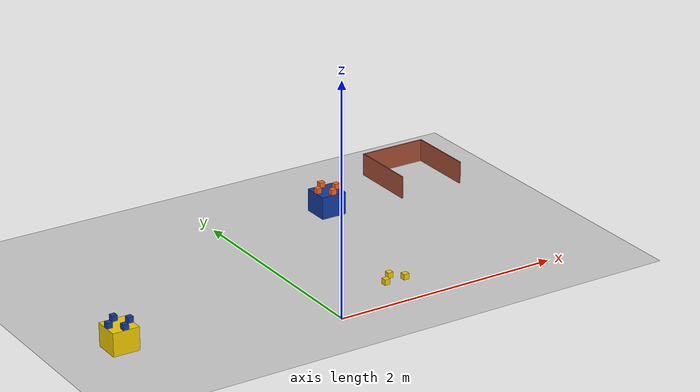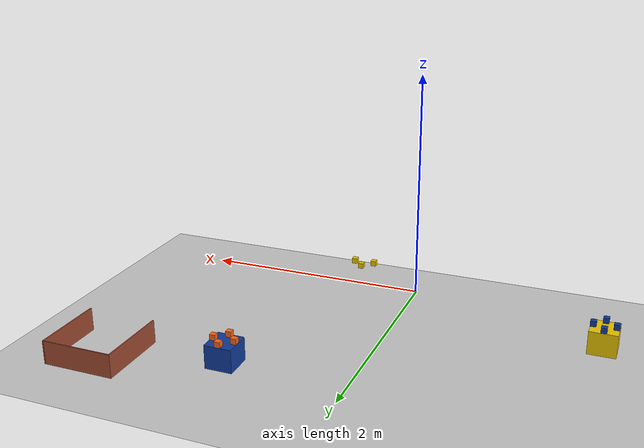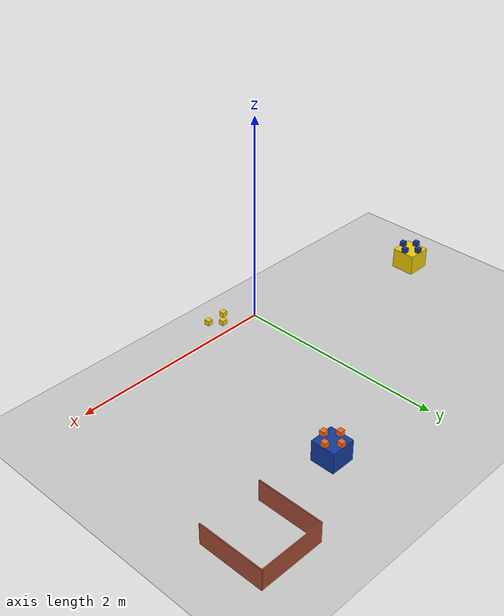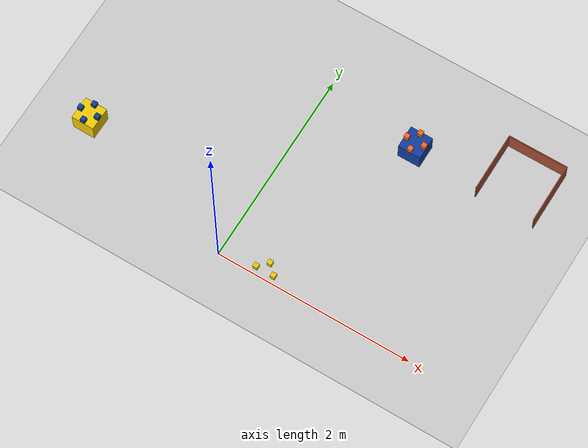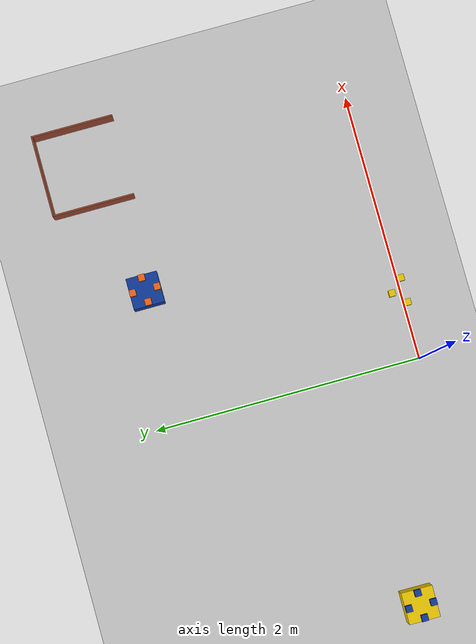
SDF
<sdf version="1.5">
 <world name="default">
  <model name="ground_plane">
   <static>1</static>
   <link name="link">
    <collision name="collision">
     <geometry><plane><normal>0 0 1</normal><size>100 100</size></plane></geometry>
     <surface><friction><ode><mu>100</mu><mu2>50</mu2></ode></friction></surface>
    </collision>
    <visual name="visual">
     <cast_shadows>0</cast_shadows>
     <geometry><plane><normal>0 0 1</normal><size>100 100</size></plane></geometry>
     <material>
      <script><uri>file://media/materials/scripts/gazebo.material</uri><name>Gazebo/Grey</name></script>
     </material>
    </visual>
   </link>
  </model>
  <model name="wroWall_0"><static>0</static><pose>0.241047 0.391778 0 0 -0 0</pose></model>
  <model name="wroWall_1"><static>0</static><pose>-0.148312 0.093379 0 0 -0 0</pose></model>
  <model name="blue_climate">
   <link name="link_0">
    <inertial>
     <mass>3</mass>
     <inertia>
      <ixx>0.166667</ixx>
      <ixy>0</ixy>
      <ixz>0</ixz>
      <iyy>0.166667</iyy>
      <iyz>0</iyz>
      <izz>0.166667</izz>
     </inertia>
    </inertial>
    <visual name="visual">
     <geometry><box><size>0.23 0.23 0.2</size></box></geometry>
     <material>
      <lighting>1</lighting>
      <script><uri>file://media/materials/scripts/gazebo.material</uri><name>Gazebo/Grey</name></script>
      <ambient>0.063 0.235 0.624 1</ambient>
      <diffuse>0.063 0.235 0.624 1</diffuse>
      <specular>0.063 0.235 0.624 1</specular>
      <emissive>0 0 0 1</emissive>
      <shader type="vertex"><normal_map>__default__</normal_map></shader>
     </material>
    </visual>
    <collision name="collision">
     <geometry><box><size>0.23 0.23 0.2</size></box></geometry>
     <surface>
      <friction>
       <ode><mu>1</mu><mu2>1</mu2><fdir1>0 0 0</fdir1><slip1>0</slip1><slip2>0</slip2></ode>
       <torsional>
        <coefficient>1</coefficient>
        <patch_radius>0</patch_radius>
        <surface_radius>0</surface_radius>
        <use_patch_radius>1</use_patch_radius>
        <ode><slip>0</slip></ode>
       </torsional>
      </friction>
      <bounce><restitution_coefficient>0.3</restitution_coefficient><threshold>1e+06</threshold></bounce>
      <contact>
       <collide_without_contact>0</collide_without_contact>
       <collide_without_contact_bitmask>1</collide_without_contact_bitmask>
       <collide_bitmask>1</collide_bitmask>
       <ode>
        <soft_cfm>0</soft_cfm>
        <soft_erp>0.2</soft_erp>
        <kp>1e+13</kp>
        <kd>1</kd>
        <max_vel>0.01</max_vel>
        <min_depth>0</min_depth>
       </ode>
       <bullet>
        <split_impulse>1</split_impulse>
        <split_impulse_penetration_threshold>-0.01</split_impulse_penetration_threshold>
        <soft_cfm>0</soft_cfm>
        <soft_erp>0.2</soft_erp>
        <kp>1e+13</kp>
        <kd>1</kd>
       </bullet>
      </contact>
     </surface>
    </collision>
   </link>
   <static>0</static>
   <pose>1 1.8 0.1 0 0 -3e-06</pose>
  </model>
  <model name="yellow_climate">
   <link name="link_0">
    <inertial>
     <mass>3</mass>
     <inertia>
      <ixx>0.166667</ixx>
      <ixy>0</ixy>
      <ixz>0</ixz>
      <iyy>0.166667</iyy>
      <iyz>0</iyz>
      <izz>0.166667</izz>
     </inertia>
    </inertial>
    <visual name="visual">
     <geometry><box><size>0.23 0.23 0.2</size></box></geometry>
     <material>
      <lighting>1</lighting>
      <script><uri>file://media/materials/scripts/gazebo.material</uri><name>Gazebo/Grey</name></script>
      <ambient>0.95 0.8 0 1</ambient>
      <diffuse>0.95 0.8 0 1</diffuse>
      <specular>0.95 0.8 0 1</specular>
      <emissive>0 0 0 1</emissive>
      <shader type="vertex"><normal_map>__default__</normal_map></shader>
     </material>
    </visual>
    <collision name="collision">
     <geometry><box><size>0.23 0.23 0.2</size></box></geometry>
     <surface>
      <friction>
       <ode><mu>1</mu><mu2>1</mu2><fdir1>0 0 0</fdir1><slip1>0</slip1><slip2>0</slip2></ode>
       <torsional>
        <coefficient>1</coefficient>
        <patch_radius>0</patch_radius>
        <surface_radius>0</surface_radius>
        <use_patch_radius>1</use_patch_radius>
        <ode><slip>0</slip></ode>
       </torsional>
      </friction>
      <bounce><restitution_coefficient>0.3</restitution_coefficient><threshold>1e+06</threshold></bounce>
      <contact>
       <collide_without_contact>0</collide_without_contact>
       <collide_without_contact_bitmask>1</collide_without_contact_bitmask>
       <collide_bitmask>1</collide_bitmask>
       <ode>
        <soft_cfm>0</soft_cfm>
        <soft_erp>0.2</soft_erp>
        <kp>1e+13</kp>
        <kd>1</kd>
        <max_vel>0.01</max_vel>
        <min_depth>0</min_depth>
       </ode>
       <bullet>
        <split_impulse>1</split_impulse>
        <split_impulse_penetration_threshold>-0.01</split_impulse_penetration_threshold>
        <soft_cfm>0</soft_cfm>
        <soft_erp>0.2</soft_erp>
        <kp>1e+13</kp>
        <kd>1</kd>
       </bullet>
      </contact>
     </surface>
    </collision>
   </link>
   <static>0</static>
   <pose>-1.7 0.5 0.09987 1e-06 3e-06 -0.008682</pose>
  </model>
  <model name="orange_plant">
   <link name="link_0">
    <inertial>
     <mass>0.03</mass>
     <inertia>
      <ixx>0.166667</ixx>
      <ixy>0</ixy>
      <ixz>0</ixz>
      <iyy>0.166667</iyy>
      <iyz>0</iyz>
      <izz>0.166667</izz>
     </inertia>
    </inertial>
    <visual name="visual">
     <geometry><box><size>0.048 0.048 0.048</size></box></geometry>
     <material>
      <lighting>1</lighting>
      <script><uri>file://media/materials/scripts/gazebo.material</uri><name>Gazebo/Grey</name></script>
      <ambient>0.99 0.4 0.1 1</ambient>
      <diffuse>0.99 0.4 0.1 1</diffuse>
      <specular>0.99 0.4 0.1 1</specular>
      <emissive>0 0 0 1</emissive>
      <shader type="vertex"><normal_map>__default__</normal_map></shader>
     </material>
    </visual>
    <collision name="collision">
     <geometry><box><size>0.048 0.048 0.048</size></box></geometry>
     <surface>
      <friction>
       <ode><mu>1</mu><mu2>1</mu2><fdir1>0 0 0</fdir1><slip1>0</slip1><slip2>0</slip2></ode>
       <torsional>
        <coefficient>1</coefficient>
        <patch_radius>0</patch_radius>
        <surface_radius>0</surface_radius>
        <use_patch_radius>1</use_patch_radius>
        <ode><slip>0</slip></ode>
       </torsional>
      </friction>
      <bounce><restitution_coefficient>0.3</restitution_coefficient><threshold>1e+06</threshold></bounce>
      <contact>
       <collide_without_contact>0</collide_without_contact>
       <collide_without_contact_bitmask>1</collide_without_contact_bitmask>
       <collide_bitmask>1</collide_bitmask>
       <ode>
        <soft_cfm>0</soft_cfm>
        <soft_erp>0.2</soft_erp>
        <kp>1e+13</kp>
        <kd>1</kd>
        <max_vel>0.01</max_vel>
        <min_depth>0</min_depth>
       </ode>
       <bullet>
        <split_impulse>1</split_impulse>
        <split_impulse_penetration_threshold>-0.01</split_impulse_penetration_threshold>
        <soft_cfm>0</soft_cfm>
        <soft_erp>0.2</soft_erp>
        <kp>1e+13</kp>
        <kd>1</kd>
       </bullet>
      </contact>
     </surface>
    </collision>
   </link>
   <static>0</static>
   <pose>0.909264 1.7999 0.224003 2.6e-05 0.000107 0.002305</pose>
  </model>
  <model name="orange_plant_0">
   <link name="link_0">
    <inertial>
     <mass>0.03</mass>
     <inertia>
      <ixx>0.166667</ixx>
      <ixy>0</ixy>
      <ixz>0</ixz>
      <iyy>0.166667</iyy>
      <iyz>0</iyz>
      <izz>0.166667</izz>
     </inertia>
    </inertial>
    <visual name="visual">
     <geometry><box><size>0.048 0.048 0.048</size></box></geometry>
     <material>
      <lighting>1</lighting>
      <script><uri>file://media/materials/scripts/gazebo.material</uri><name>Gazebo/Grey</name></script>
      <ambient>0.99 0.4 0.1 1</ambient>
      <diffuse>0.99 0.4 0.1 1</diffuse>
      <specular>0.99 0.4 0.1 1</specular>
      <emissive>0 0 0 1</emissive>
      <shader type="vertex"><normal_map>__default__</normal_map></shader>
     </material>
    </visual>
    <collision name="collision">
     <geometry><box><size>0.048 0.048 0.048</size></box></geometry>
     <surface>
      <friction>
       <ode><mu>1</mu><mu2>1</mu2><fdir1>0 0 0</fdir1><slip1>0</slip1><slip2>0</slip2></ode>
       <torsional>
        <coefficient>1</coefficient>
        <patch_radius>0</patch_radius>
        <surface_radius>0</surface_radius>
        <use_patch_radius>1</use_patch_radius>
        <ode><slip>0</slip></ode>
       </torsional>
      </friction>
      <bounce><restitution_coefficient>0.3</restitution_coefficient><threshold>1e+06</threshold></bounce>
      <contact>
       <collide_without_contact>0</collide_without_contact>
       <collide_without_contact_bitmask>1</collide_without_contact_bitmask>
       <collide_bitmask>1</collide_bitmask>
       <ode>
        <soft_cfm>0</soft_cfm>
        <soft_erp>0.2</soft_erp>
        <kp>1e+13</kp>
        <kd>1</kd>
        <max_vel>0.01</max_vel>
        <min_depth>0</min_depth>
       </ode>
       <bullet>
        <split_impulse>1</split_impulse>
        <split_impulse_penetration_threshold>-0.01</split_impulse_penetration_threshold>
        <soft_cfm>0</soft_cfm>
        <soft_erp>0.2</soft_erp>
        <kp>1e+13</kp>
        <kd>1</kd>
       </bullet>
      </contact>
     </surface>
    </collision>
   </link>
   <static>0</static>
   <pose>1.09081 1.80007 0.224001 1.6e-05 -1.6e-05 0.004322</pose>
  </model>
  <model name="orange_plant_1">
   <link name="link_0">
    <inertial>
     <mass>0.03</mass>
     <inertia>
      <ixx>0.166667</ixx>
      <ixy>0</ixy>
      <ixz>0</ixz>
      <iyy>0.166667</iyy>
      <iyz>0</iyz>
      <izz>0.166667</izz>
     </inertia>
    </inertial>
    <visual name="visual">
     <geometry><box><size>0.048 0.048 0.048</size></box></geometry>
     <material>
      <lighting>1</lighting>
      <script><uri>file://media/materials/scripts/gazebo.material</uri><name>Gazebo/Grey</name></script>
      <ambient>0.99 0.4 0.1 1</ambient>
      <diffuse>0.99 0.4 0.1 1</diffuse>
      <specular>0.99 0.4 0.1 1</specular>
      <emissive>0 0 0 1</emissive>
      <shader type="vertex"><normal_map>__default__</normal_map></shader>
     </material>
    </visual>
    <collision name="collision">
     <geometry><box><size>0.048 0.048 0.048</size></box></geometry>
     <surface>
      <friction>
       <ode><mu>1</mu><mu2>1</mu2><fdir1>0 0 0</fdir1><slip1>0</slip1><slip2>0</slip2></ode>
       <torsional>
        <coefficient>1</coefficient>
        <patch_radius>0</patch_radius>
        <surface_radius>0</surface_radius>
        <use_patch_radius>1</use_patch_radius>
        <ode><slip>0</slip></ode>
       </torsional>
      </friction>
      <bounce><restitution_coefficient>0.3</restitution_coefficient><threshold>1e+06</threshold></bounce>
      <contact>
       <collide_without_contact>0</collide_without_contact>
       <collide_without_contact_bitmask>1</collide_without_contact_bitmask>
       <collide_bitmask>1</collide_bitmask>
       <ode>
        <soft_cfm>0</soft_cfm>
        <soft_erp>0.2</soft_erp>
        <kp>1e+13</kp>
        <kd>1</kd>
        <max_vel>0.01</max_vel>
        <min_depth>0</min_depth>
       </ode>
       <bullet>
        <split_impulse>1</split_impulse>
        <split_impulse_penetration_threshold>-0.01</split_impulse_penetration_threshold>
        <soft_cfm>0</soft_cfm>
        <soft_erp>0.2</soft_erp>
        <kp>1e+13</kp>
        <kd>1</kd>
       </bullet>
      </contact>
     </surface>
    </collision>
   </link>
   <static>0</static>
   <pose>0.999988 1.70914 0.224001 1.1e-05 2e-05 -0.000402</pose>
  </model>
  <model name="orange_plant_2">
   <link name="link_0">
    <inertial>
     <mass>0.03</mass>
     <inertia>
      <ixx>0.166667</ixx>
      <ixy>0</ixy>
      <ixz>0</ixz>
      <iyy>0.166667</iyy>
      <iyz>0</iyz>
      <izz>0.166667</izz>
     </inertia>
    </inertial>
    <visual name="visual">
     <geometry><box><size>0.048 0.048 0.048</size></box></geometry>
     <material>
      <lighting>1</lighting>
      <script><uri>file://media/materials/scripts/gazebo.material</uri><name>Gazebo/Grey</name></script>
      <ambient>0.99 0.4 0.1 1</ambient>
      <diffuse>0.99 0.4 0.1 1</diffuse>
      <specular>0.99 0.4 0.1 1</specular>
      <emissive>0 0 0 1</emissive>
      <shader type="vertex"><normal_map>__default__</normal_map></shader>
     </material>
    </visual>
    <collision name="collision">
     <geometry><box><size>0.048 0.048 0.048</size></box></geometry>
     <surface>
      <friction>
       <ode><mu>1</mu><mu2>1</mu2><fdir1>0 0 0</fdir1><slip1>0</slip1><slip2>0</slip2></ode>
       <torsional>
        <coefficient>1</coefficient>
        <patch_radius>0</patch_radius>
        <surface_radius>0</surface_radius>
        <use_patch_radius>1</use_patch_radius>
        <ode><slip>0</slip></ode>
       </torsional>
      </friction>
      <bounce><restitution_coefficient>0.3</restitution_coefficient><threshold>1e+06</threshold></bounce>
      <contact>
       <collide_without_contact>0</collide_without_contact>
       <collide_without_contact_bitmask>1</collide_without_contact_bitmask>
       <collide_bitmask>1</collide_bitmask>
       <ode>
        <soft_cfm>0</soft_cfm>
        <soft_erp>0.2</soft_erp>
        <kp>1e+13</kp>
        <kd>1</kd>
        <max_vel>0.01</max_vel>
        <min_depth>0</min_depth>
       </ode>
       <bullet>
        <split_impulse>1</split_impulse>
        <split_impulse_penetration_threshold>-0.01</split_impulse_penetration_threshold>
        <soft_cfm>0</soft_cfm>
        <soft_erp>0.2</soft_erp>
        <kp>1e+13</kp>
        <kd>1</kd>
       </bullet>
      </contact>
     </surface>
    </collision>
   </link>
   <static>0</static>
   <pose>1.00009 1.89099 0.223993 -4.9e-05 -3.6e-05 0.002149</pose>
  </model>
  <model name="yellow_plant">
   <link name="link_0">
    <inertial>
     <mass>0.03</mass>
     <inertia>
      <ixx>0.166667</ixx>
      <ixy>0</ixy>
      <ixz>0</ixz>
      <iyy>0.166667</iyy>
      <iyz>0</iyz>
      <izz>0.166667</izz>
     </inertia>
    </inertial>
    <visual name="visual">
     <geometry><box><size>0.048 0.048 0.048</size></box></geometry>
     <material>
      <lighting>1</lighting>
      <script><uri>file://media/materials/scripts/gazebo.material</uri><name>Gazebo/Grey</name></script>
      <ambient>0.95 0.8 0 1</ambient>
      <diffuse>0.95 0.8 0 1</diffuse>
      <specular>0.95 0.8 0 1</specular>
      <emissive>0 0 0 1</emissive>
      <shader type="vertex"><normal_map>__default__</normal_map></shader>
     </material>
    </visual>
    <collision name="collision">
     <geometry><box><size>0.048 0.048 0.048</size></box></geometry>
     <surface>
      <friction>
       <ode><mu>1</mu><mu2>1</mu2><fdir1>0 0 0</fdir1><slip1>0</slip1><slip2>0</slip2></ode>
       <torsional>
        <coefficient>1</coefficient>
        <patch_radius>0</patch_radius>
        <surface_radius>0</surface_radius>
        <use_patch_radius>1</use_patch_radius>
        <ode><slip>0</slip></ode>
       </torsional>
      </friction>
      <bounce><restitution_coefficient>0.3</restitution_coefficient><threshold>1e+06</threshold></bounce>
      <contact>
       <collide_without_contact>0</collide_without_contact>
       <collide_without_contact_bitmask>1</collide_without_contact_bitmask>
       <collide_bitmask>1</collide_bitmask>
       <ode>
        <soft_cfm>0</soft_cfm>
        <soft_erp>0.2</soft_erp>
        <kp>1e+13</kp>
        <kd>1</kd>
        <max_vel>0.01</max_vel>
        <min_depth>0</min_depth>
       </ode>
       <bullet>
        <split_impulse>1</split_impulse>
        <split_impulse_penetration_threshold>-0.01</split_impulse_penetration_threshold>
        <soft_cfm>0</soft_cfm>
        <soft_erp>0.2</soft_erp>
        <kp>1e+13</kp>
        <kd>1</kd>
       </bullet>
      </contact>
     </surface>
    </collision>
   </link>
   <static>0</static>
   <pose>0.40928 7.8e-05 0.224003 -8.7e-05 3e-05 -0.00278</pose>
  </model>
  <model name="yellow_plant_0">
   <link name="link_0">
    <inertial>
     <mass>0.03</mass>
     <inertia>
      <ixx>0.166667</ixx>
      <ixy>0</ixy>
      <ixz>0</ixz>
      <iyy>0.166667</iyy>
      <iyz>0</iyz>
      <izz>0.166667</izz>
     </inertia>
    </inertial>
    <visual name="visual">
     <geometry><box><size>0.048 0.048 0.048</size></box></geometry>
     <material>
      <lighting>1</lighting>
      <script><uri>file://media/materials/scripts/gazebo.material</uri><name>Gazebo/Grey</name></script>
      <ambient>0.95 0.8 0 1</ambient>
      <diffuse>0.95 0.8 0 1</diffuse>
      <specular>0.95 0.8 0 1</specular>
      <emissive>0 0 0 1</emissive>
      <shader type="vertex"><normal_map>__default__</normal_map></shader>
     </material>
    </visual>
    <collision name="collision">
     <geometry><box><size>0.048 0.048 0.048</size></box></geometry>
     <surface>
      <friction>
       <ode><mu>1</mu><mu2>1</mu2><fdir1>0 0 0</fdir1><slip1>0</slip1><slip2>0</slip2></ode>
       <torsional>
        <coefficient>1</coefficient>
        <patch_radius>0</patch_radius>
        <surface_radius>0</surface_radius>
        <use_patch_radius>1</use_patch_radius>
        <ode><slip>0</slip></ode>
       </torsional>
      </friction>
      <bounce><restitution_coefficient>0.3</restitution_coefficient><threshold>1e+06</threshold></bounce>
      <contact>
       <collide_without_contact>0</collide_without_contact>
       <collide_without_contact_bitmask>1</collide_without_contact_bitmask>
       <collide_bitmask>1</collide_bitmask>
       <ode>
        <soft_cfm>0</soft_cfm>
        <soft_erp>0.2</soft_erp>
        <kp>1e+13</kp>
        <kd>1</kd>
        <max_vel>0.01</max_vel>
        <min_depth>0</min_depth>
       </ode>
       <bullet>
        <split_impulse>1</split_impulse>
        <split_impulse_penetration_threshold>-0.01</split_impulse_penetration_threshold>
        <soft_cfm>0</soft_cfm>
        <soft_erp>0.2</soft_erp>
        <kp>1e+13</kp>
        <kd>1</kd>
       </bullet>
      </contact>
     </surface>
    </collision>
   </link>
   <static>0</static>
   <pose>0.590786 5.4e-05 0.224003 2.6e-05 9e-05 -0.000201</pose>
  </model>
  <model name="yellow_plant_1">
   <link name="link_0">
    <inertial>
     <mass>0.03</mass>
     <inertia>
      <ixx>0.166667</ixx>
      <ixy>0</ixy>
      <ixz>0</ixz>
      <iyy>0.166667</iyy>
      <iyz>0</iyz>
      <izz>0.166667</izz>
     </inertia>
    </inertial>
    <visual name="visual">
     <geometry><box><size>0.048 0.048 0.048</size></box></geometry>
     <material>
      <lighting>1</lighting>
      <script><uri>file://media/materials/scripts/gazebo.material</uri><name>Gazebo/Grey</name></script>
      <ambient>0.95 0.8 0 1</ambient>
      <diffuse>0.95 0.8 0 1</diffuse>
      <specular>0.95 0.8 0 1</specular>
      <emissive>0 0 0 1</emissive>
      <shader type="vertex"><normal_map>__default__</normal_map></shader>
     </material>
    </visual>
    <collision name="collision">
     <geometry><box><size>0.048 0.048 0.048</size></box></geometry>
     <surface>
      <friction>
       <ode><mu>1</mu><mu2>1</mu2><fdir1>0 0 0</fdir1><slip1>0</slip1><slip2>0</slip2></ode>
       <torsional>
        <coefficient>1</coefficient>
        <patch_radius>0</patch_radius>
        <surface_radius>0</surface_radius>
        <use_patch_radius>1</use_patch_radius>
        <ode><slip>0</slip></ode>
       </torsional>
      </friction>
      <bounce><restitution_coefficient>0.3</restitution_coefficient><threshold>1e+06</threshold></bounce>
      <contact>
       <collide_without_contact>0</collide_without_contact>
       <collide_without_contact_bitmask>1</collide_without_contact_bitmask>
       <collide_bitmask>1</collide_bitmask>
       <ode>
        <soft_cfm>0</soft_cfm>
        <soft_erp>0.2</soft_erp>
        <kp>1e+13</kp>
        <kd>1</kd>
        <max_vel>0.01</max_vel>
        <min_depth>0</min_depth>
       </ode>
       <bullet>
        <split_impulse>1</split_impulse>
        <split_impulse_penetration_threshold>-0.01</split_impulse_penetration_threshold>
        <soft_cfm>0</soft_cfm>
        <soft_erp>0.2</soft_erp>
        <kp>1e+13</kp>
        <kd>1</kd>
       </bullet>
      </contact>
     </surface>
    </collision>
   </link>
   <static>0</static>
   <pose>0.50012 0.090924 0.224 -1.1e-05 -6e-06 0.001392</pose>
  </model>
  <model name="blue_plants">
   <link name="link_0">
    <inertial>
     <mass>0.03</mass>
     <inertia>
      <ixx>0.166667</ixx>
      <ixy>0</ixy>
      <ixz>0</ixz>
      <iyy>0.166667</iyy>
      <iyz>0</iyz>
      <izz>0.166667</izz>
     </inertia>
    </inertial>
    <visual name="visual">
     <geometry><box><size>0.048 0.048 0.048</size></box></geometry>
     <material>
      <lighting>1</lighting>
      <script><uri>file://media/materials/scripts/gazebo.material</uri><name>Gazebo/Grey</name></script>
      <ambient>0.063 0.235 0.624 1</ambient>
      <diffuse>0.063 0.235 0.624 1</diffuse>
      <specular>0.063 0.235 0.624 1</specular>
      <emissive>0 0 0 1</emissive>
      <shader type="vertex"><normal_map>__default__</normal_map></shader>
     </material>
    </visual>
    <collision name="collision">
     <geometry><box><size>0.048 0.048 0.048</size></box></geometry>
     <surface>
      <friction>
       <ode><mu>1</mu><mu2>1</mu2><fdir1>0 0 0</fdir1><slip1>0</slip1><slip2>0</slip2></ode>
       <torsional>
        <coefficient>1</coefficient>
        <patch_radius>0</patch_radius>
        <surface_radius>0</surface_radius>
        <use_patch_radius>1</use_patch_radius>
        <ode><slip>0</slip></ode>
       </torsional>
      </friction>
      <bounce><restitution_coefficient>0.3</restitution_coefficient><threshold>1e+06</threshold></bounce>
      <contact>
       <collide_without_contact>0</collide_without_contact>
       <collide_without_contact_bitmask>1</collide_without_contact_bitmask>
       <collide_bitmask>1</collide_bitmask>
       <ode>
        <soft_cfm>0</soft_cfm>
        <soft_erp>0.2</soft_erp>
        <kp>1e+13</kp>
        <kd>1</kd>
        <max_vel>0.01</max_vel>
        <min_depth>0</min_depth>
       </ode>
       <bullet>
        <split_impulse>1</split_impulse>
        <split_impulse_penetration_threshold>-0.01</split_impulse_penetration_threshold>
        <soft_cfm>0</soft_cfm>
        <soft_erp>0.2</soft_erp>
        <kp>1e+13</kp>
        <kd>1</kd>
       </bullet>
      </contact>
     </surface>
    </collision>
   </link>
   <static>0</static>
   <pose>-1.60909 0.500066 0.223865 6.6e-05 -0.000128 0.000303</pose>
  </model>
  <model name="blue_plants_0">
   <link name="link_0">
    <inertial>
     <mass>0.03</mass>
     <inertia>
      <ixx>0.166667</ixx>
      <ixy>0</ixy>
      <ixz>0</ixz>
      <iyy>0.166667</iyy>
      <iyz>0</iyz>
      <izz>0.166667</izz>
     </inertia>
    </inertial>
    <visual name="visual">
     <geometry><box><size>0.048 0.048 0.048</size></box></geometry>
     <material>
      <lighting>1</lighting>
      <script><uri>file://media/materials/scripts/gazebo.material</uri><name>Gazebo/Grey</name></script>
      <ambient>0.063 0.235 0.624 1</ambient>
      <diffuse>0.063 0.235 0.624 1</diffuse>
      <specular>0.063 0.235 0.624 1</specular>
      <emissive>0 0 0 1</emissive>
      <shader type="vertex"><normal_map>__default__</normal_map></shader>
     </material>
    </visual>
    <collision name="collision">
     <geometry><box><size>0.048 0.048 0.048</size></box></geometry>
     <surface>
      <friction>
       <ode><mu>1</mu><mu2>1</mu2><fdir1>0 0 0</fdir1><slip1>0</slip1><slip2>0</slip2></ode>
       <torsional>
        <coefficient>1</coefficient>
        <patch_radius>0</patch_radius>
        <surface_radius>0</surface_radius>
        <use_patch_radius>1</use_patch_radius>
        <ode><slip>0</slip></ode>
       </torsional>
      </friction>
      <bounce><restitution_coefficient>0.3</restitution_coefficient><threshold>1e+06</threshold></bounce>
      <contact>
       <collide_without_contact>0</collide_without_contact>
       <collide_without_contact_bitmask>1</collide_without_contact_bitmask>
       <collide_bitmask>1</collide_bitmask>
       <ode>
        <soft_cfm>0</soft_cfm>
        <soft_erp>0.2</soft_erp>
        <kp>1e+13</kp>
        <kd>1</kd>
        <max_vel>0.01</max_vel>
        <min_depth>0</min_depth>
       </ode>
       <bullet>
        <split_impulse>1</split_impulse>
        <split_impulse_penetration_threshold>-0.01</split_impulse_penetration_threshold>
        <soft_cfm>0</soft_cfm>
        <soft_erp>0.2</soft_erp>
        <kp>1e+13</kp>
        <kd>1</kd>
       </bullet>
      </contact>
     </surface>
    </collision>
   </link>
   <static>0</static>
   <pose>-1.79089 0.499828 0.224009 2.6e-05 0.000359 0.000359</pose>
  </model>
  <model name="blue_plants_1">
   <link name="link_0">
    <inertial>
     <mass>0.03</mass>
     <inertia>
      <ixx>0.166667</ixx>
      <ixy>0</ixy>
      <ixz>0</ixz>
      <iyy>0.166667</iyy>
      <iyz>0</iyz>
      <izz>0.166667</izz>
     </inertia>
    </inertial>
    <visual name="visual">
     <geometry><box><size>0.048 0.048 0.048</size></box></geometry>
     <material>
      <lighting>1</lighting>
      <script><uri>file://media/materials/scripts/gazebo.material</uri><name>Gazebo/Grey</name></script>
      <ambient>0.063 0.235 0.624 1</ambient>
      <diffuse>0.063 0.235 0.624 1</diffuse>
      <specular>0.063 0.235 0.624 1</specular>
      <emissive>0 0 0 1</emissive>
      <shader type="vertex"><normal_map>__default__</normal_map></shader>
     </material>
    </visual>
    <collision name="collision">
     <geometry><box><size>0.048 0.048 0.048</size></box></geometry>
     <surface>
      <friction>
       <ode><mu>1</mu><mu2>1</mu2><fdir1>0 0 0</fdir1><slip1>0</slip1><slip2>0</slip2></ode>
       <torsional>
        <coefficient>1</coefficient>
        <patch_radius>0</patch_radius>
        <surface_radius>0</surface_radius>
        <use_patch_radius>1</use_patch_radius>
        <ode><slip>0</slip></ode>
       </torsional>
      </friction>
      <bounce><restitution_coefficient>0.3</restitution_coefficient><threshold>1e+06</threshold></bounce>
      <contact>
       <collide_without_contact>0</collide_without_contact>
       <collide_without_contact_bitmask>1</collide_without_contact_bitmask>
       <collide_bitmask>1</collide_bitmask>
       <ode>
        <soft_cfm>0</soft_cfm>
        <soft_erp>0.2</soft_erp>
        <kp>1e+13</kp>
        <kd>1</kd>
        <max_vel>0.01</max_vel>
        <min_depth>0</min_depth>
       </ode>
       <bullet>
        <split_impulse>1</split_impulse>
        <split_impulse_penetration_threshold>-0.01</split_impulse_penetration_threshold>
        <soft_cfm>0</soft_cfm>
        <soft_erp>0.2</soft_erp>
        <kp>1e+13</kp>
        <kd>1</kd>
       </bullet>
      </contact>
     </surface>
    </collision>
   </link>
   <static>0</static>
   <pose>-1.69997 0.590936 0.224004 3e-06 0.000179 0.002293</pose>
  </model>
  <model name="blue_plants_2">
   <link name="link_0">
    <inertial>
     <mass>0.03</mass>
     <inertia>
      <ixx>0.166667</ixx>
      <ixy>0</ixy>
      <ixz>0</ixz>
      <iyy>0.166667</iyy>
      <iyz>0</iyz>
      <izz>0.166667</izz>
     </inertia>
    </inertial>
    <visual name="visual">
     <geometry><box><size>0.048 0.048 0.048</size></box></geometry>
     <material>
      <lighting>1</lighting>
      <script><uri>file://media/materials/scripts/gazebo.material</uri><name>Gazebo/Grey</name></script>
      <ambient>0.063 0.235 0.624 1</ambient>
      <diffuse>0.063 0.235 0.624 1</diffuse>
      <specular>0.063 0.235 0.624 1</specular>
      <emissive>0 0 0 1</emissive>
      <shader type="vertex"><normal_map>__default__</normal_map></shader>
     </material>
    </visual>
    <collision name="collision">
     <geometry><box><size>0.048 0.048 0.048</size></box></geometry>
     <surface>
      <friction>
       <ode><mu>1</mu><mu2>1</mu2><fdir1>0 0 0</fdir1><slip1>0</slip1><slip2>0</slip2></ode>
       <torsional>
        <coefficient>1</coefficient>
        <patch_radius>0</patch_radius>
        <surface_radius>0</surface_radius>
        <use_patch_radius>1</use_patch_radius>
        <ode><slip>0</slip></ode>
       </torsional>
      </friction>
      <bounce><restitution_coefficient>0.3</restitution_coefficient><threshold>1e+06</threshold></bounce>
      <contact>
       <collide_without_contact>0</collide_without_contact>
       <collide_without_contact_bitmask>1</collide_without_contact_bitmask>
       <collide_bitmask>1</collide_bitmask>
       <ode>
        <soft_cfm>0</soft_cfm>
        <soft_erp>0.2</soft_erp>
        <kp>1e+13</kp>
        <kd>1</kd>
        <max_vel>0.01</max_vel>
        <min_depth>0</min_depth>
       </ode>
       <bullet>
        <split_impulse>1</split_impulse>
        <split_impulse_penetration_threshold>-0.01</split_impulse_penetration_threshold>
        <soft_cfm>0</soft_cfm>
        <soft_erp>0.2</soft_erp>
        <kp>1e+13</kp>
        <kd>1</kd>
       </bullet>
      </contact>
     </surface>
    </collision>
   </link>
   <static>0</static>
   <pose>-1.70007 0.409009 0.224008 -3.9e-05 0.000285 0.00141</pose>
  </model>
  <model name="big_start_wall">
   <pose>2 2 0 0 -0 0</pose>
   <link name="Wall_5">
    <collision name="Wall_5_Collision">
     <geometry><box><size>0.60972 0.01 0.2</size></box></geometry>
     <pose>0 0 0.1 0 -0 0</pose>
    </collision>
    <visual name="Wall_5_Visual">
     <pose>0 0 0.1 0 -0 0</pose>
     <geometry><box><size>0.60972 0.01 0.2</size></box></geometry>
     <material>
      <script><uri>file://media/materials/scripts/gazebo.material</uri><name>Gazebo/Bricks</name></script>
      <ambient>1 1 1 1</ambient>
     </material>
    </visual>
    <pose>-0.3 0 0 0 -0 1.5708</pose>
   </link>
   <link name="Wall_6">
    <collision name="Wall_6_Collision">
     <geometry><box><size>0.609591 0.01 0.2</size></box></geometry>
     <pose>0 0 0.1 0 -0 0</pose>
    </collision>
    <visual name="Wall_6_Visual">
     <pose>0 0 0.1 0 -0 0</pose>
     <geometry><box><size>0.609591 0.01 0.2</size></box></geometry>
     <material>
      <script><uri>file://media/materials/scripts/gazebo.material</uri><name>Gazebo/Bricks</name></script>
      <ambient>1 1 1 1</ambient>
     </material>
    </visual>
    <pose>0 0.3 0 0 -0 0</pose>
   </link>
   <link name="Wall_7">
    <collision name="Wall_7_Collision">
     <geometry><box><size>0.61028 0.01 0.2</size></box></geometry>
     <pose>0 0 0.1 0 -0 0</pose>
    </collision>
    <visual name="Wall_7_Visual">
     <pose>0 0 0.1 0 -0 0</pose>
     <geometry><box><size>0.61028 0.01 0.2</size></box></geometry>
     <material>
      <script><uri>file://media/materials/scripts/gazebo.material</uri><name>Gazebo/Bricks</name></script>
      <ambient>1 1 1 1</ambient>
     </material>
    </visual>
    <pose>0.3 0 0 0 0 -1.5708</pose>
   </link>
   <static>1</static>
  </model>
 </world>
</sdf>
